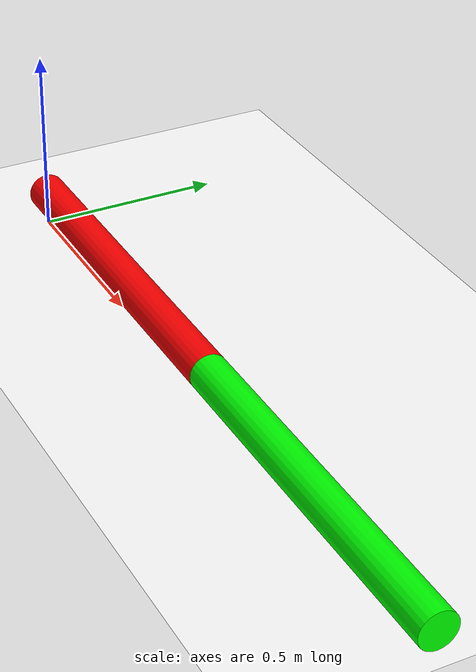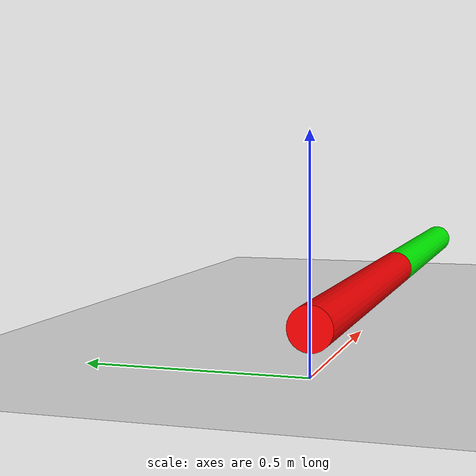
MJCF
<mujoco>
    <option gravity="0 0 0" />
     <worldbody>
        <light diffuse=".5 .5 .5" pos="0 0 10" dir="0 0 -1"/>
        <geom type="plane" size="2 2 0.1" rgba="1 1 1 1"/>
        <body pos="0.5 0 0.1" euler="0 90 0">
            <joint type="hinge" axis="-1 0 0" pos="0 0 -0.5" />
            <geom type="cylinder" size="0.05 0.5" rgba="1 0 0 1"/>
            <body pos="0 0 1" euler="0 0 0">
                <joint type="hinge" axis="-1 0 0" pos="0 0 -0.5"/>
                <geom type="cylinder" size="0.05 0.5" rgba="0 1 0 1"/>
            </body>
        </body>
    </worldbody>
</mujoco>
